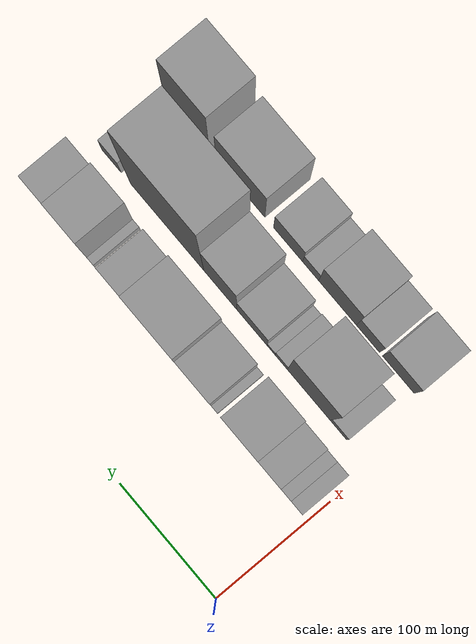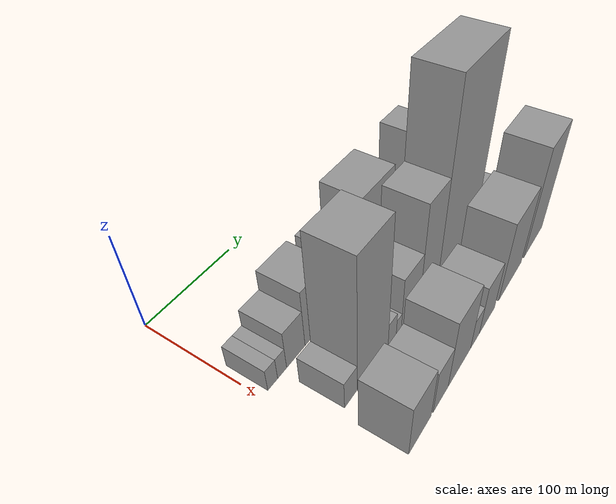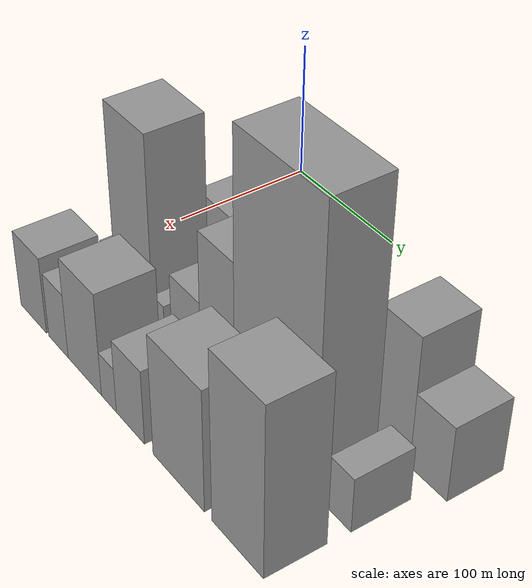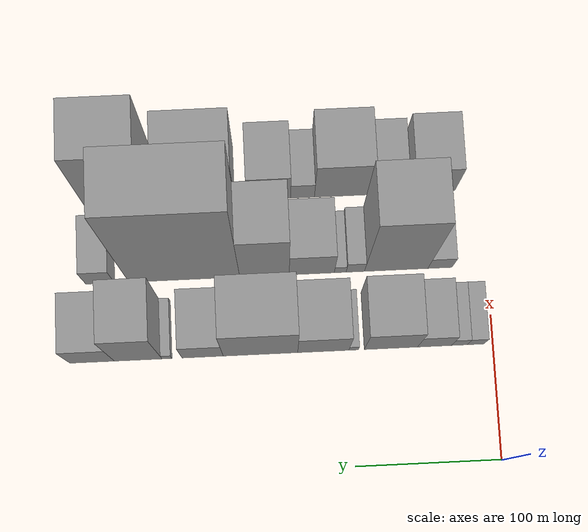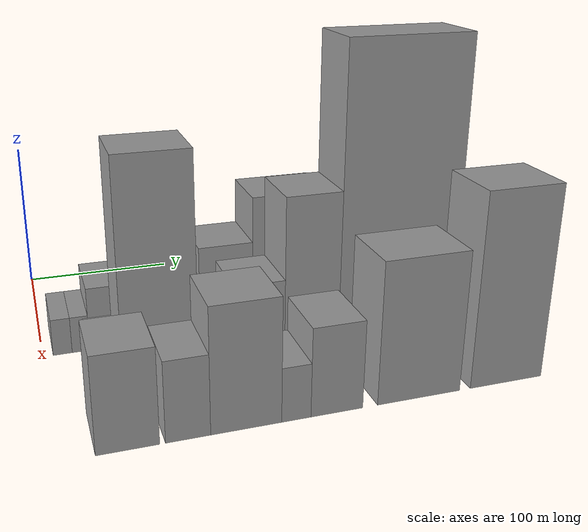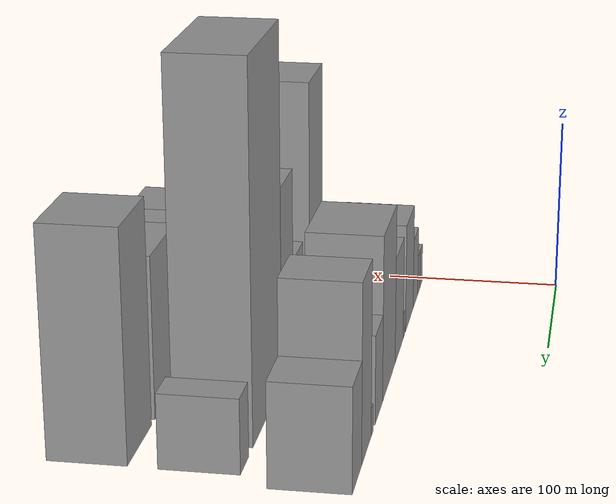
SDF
<sdf version="1.6">
 <world name="default">
  <model name="building_16">
   <static>1</static>
   <pose>100.0000 12.1694 0 0.000000 0.000000 0.000000</pose>
   <link name="link">
    <pose>0 0 12.00 0 0 0</pose>
    <collision name="collision"><geometry><box><size>40.0000 11.6483 24.0000</size></box></geometry></collision>
    <visual name="visual">
     <cast_shadows>0</cast_shadows>
     <geometry><box><size>40.0000 11.6483 24.0000</size></box></geometry>
     <material>
      <script>
       <uri>model://grey_wall/materials/scripts</uri>
       <uri>model://grey_wall/materials/textures</uri>
       <name>vrc/grey_wall</name>
      </script>
     </material>
    </visual>
   </link>
  </model>
  <model name="building_17">
   <static>1</static>
   <pose>100.0000 23.4495 0 0.000000 0.000000 0.000000</pose>
   <link name="link">
    <pose>0 0 12.00 0 0 0</pose>
    <collision name="collision"><geometry><box><size>40.0000 10.9120 24.0000</size></box></geometry></collision>
    <visual name="visual">
     <cast_shadows>0</cast_shadows>
     <geometry><box><size>40.0000 10.9120 24.0000</size></box></geometry>
     <material>
      <script>
       <uri>model://grey_wall/materials/scripts</uri>
       <uri>model://grey_wall/materials/textures</uri>
       <name>vrc/grey_wall</name>
      </script>
     </material>
    </visual>
   </link>
  </model>
  <model name="building_18">
   <static>1</static>
   <pose>100.0000 40.6644 0 0.000000 0.000000 0.000000</pose>
   <link name="link">
    <pose>0 0 21.00 0 0 0</pose>
    <collision name="collision"><geometry><box><size>40.0000 23.5177 42.0000</size></box></geometry></collision>
    <visual name="visual">
     <cast_shadows>0</cast_shadows>
     <geometry><box><size>40.0000 23.5177 42.0000</size></box></geometry>
     <material>
      <script>
       <uri>model://grey_wall/materials/scripts</uri>
       <uri>model://grey_wall/materials/textures</uri>
       <name>vrc/grey_wall</name>
      </script>
     </material>
    </visual>
   </link>
  </model>
  <model name="building_19">
   <static>1</static>
   <pose>100.0000 70.8931 0 0.000000 0.000000 0.000000</pose>
   <link name="link">
    <pose>0 0 31.50 0 0 0</pose>
    <collision name="collision"><geometry><box><size>40.0000 36.9398 63.0000</size></box></geometry></collision>
    <visual name="visual">
     <cast_shadows>0</cast_shadows>
     <geometry><box><size>40.0000 36.9398 63.0000</size></box></geometry>
     <material>
      <script>
       <uri>model://grey_wall/materials/scripts</uri>
       <uri>model://grey_wall/materials/textures</uri>
       <name>vrc/grey_wall</name>
      </script>
     </material>
    </visual>
   </link>
  </model>
  <model name="building_20">
   <static>1</static>
   <pose>100.0000 96.7150 0 0.000000 0.000000 0.000000</pose>
   <link name="link">
    <pose>0 0 7.50 0 0 0</pose>
    <collision name="collision"><geometry><box><size>40.0000 6.7040 15.0000</size></box></geometry></collision>
    <visual name="visual">
     <cast_shadows>0</cast_shadows>
     <geometry><box><size>40.0000 6.7040 15.0000</size></box></geometry>
     <material>
      <script>
       <uri>model://grey_wall/materials/scripts</uri>
       <uri>model://grey_wall/materials/textures</uri>
       <name>vrc/grey_wall</name>
      </script>
     </material>
    </visual>
   </link>
  </model>
  <model name="building_21">
   <static>1</static>
   <pose>100.0000 117.7842 0 0.000000 0.000000 0.000000</pose>
   <link name="link">
    <pose>0 0 30.00 0 0 0</pose>
    <collision name="collision"><geometry><box><size>40.0000 35.4345 60.0000</size></box></geometry></collision>
    <visual name="visual">
     <cast_shadows>0</cast_shadows>
     <geometry><box><size>40.0000 35.4345 60.0000</size></box></geometry>
     <material>
      <script>
       <uri>model://grey_wall/materials/scripts</uri>
       <uri>model://grey_wall/materials/textures</uri>
       <name>vrc/grey_wall</name>
      </script>
     </material>
    </visual>
   </link>
  </model>
  <model name="building_22">
   <static>1</static>
   <pose>100.0000 161.2391 0 0.000000 0.000000 0.000000</pose>
   <link name="link">
    <pose>0 0 45.00 0 0 0</pose>
    <collision name="collision"><geometry><box><size>40.0000 51.4753 90.0000</size></box></geometry></collision>
    <visual name="visual">
     <cast_shadows>0</cast_shadows>
     <geometry><box><size>40.0000 51.4753 90.0000</size></box></geometry>
     <material>
      <script>
       <uri>model://grey_wall/materials/scripts</uri>
       <uri>model://grey_wall/materials/textures</uri>
       <name>vrc/grey_wall</name>
      </script>
     </material>
    </visual>
   </link>
  </model>
  <model name="building_23">
   <static>1</static>
   <pose>100.0000 201.2230 0 0.000000 0.000000 0.000000</pose>
   <link name="link">
    <pose>0 0 24.00 0 0 0</pose>
    <collision name="collision"><geometry><box><size>40.0000 28.4923 48.0000</size></box></geometry></collision>
    <visual name="visual">
     <cast_shadows>0</cast_shadows>
     <geometry><box><size>40.0000 28.4923 48.0000</size></box></geometry>
     <material>
      <script>
       <uri>model://grey_wall/materials/scripts</uri>
       <uri>model://grey_wall/materials/textures</uri>
       <name>vrc/grey_wall</name>
      </script>
     </material>
    </visual>
   </link>
  </model>
  <model name="building_24">
   <static>1</static>
   <pose>100.0000 225.8914 0 0.000000 0.000000 0.000000</pose>
   <link name="link">
    <pose>0 0 7.50 0 0 0</pose>
    <collision name="collision"><geometry><box><size>40.0000 6.8446 15.0000</size></box></geometry></collision>
    <visual name="visual">
     <cast_shadows>0</cast_shadows>
     <geometry><box><size>40.0000 6.8446 15.0000</size></box></geometry>
     <material>
      <script>
       <uri>model://grey_wall/materials/scripts</uri>
       <uri>model://grey_wall/materials/textures</uri>
       <name>vrc/grey_wall</name>
      </script>
     </material>
    </visual>
   </link>
  </model>
  <model name="building_25">
   <static>1</static>
   <pose>100.0000 245.7878 0 0.000000 0.000000 0.000000</pose>
   <link name="link">
    <pose>0 0 46.50 0 0 0</pose>
    <collision name="collision"><geometry><box><size>40.0000 32.9482 93.0000</size></box></geometry></collision>
    <visual name="visual">
     <cast_shadows>0</cast_shadows>
     <geometry><box><size>40.0000 32.9482 93.0000</size></box></geometry>
     <material>
      <script>
       <uri>model://grey_wall/materials/scripts</uri>
       <uri>model://grey_wall/materials/textures</uri>
       <name>vrc/grey_wall</name>
      </script>
     </material>
    </visual>
   </link>
  </model>
  <model name="building_26">
   <static>1</static>
   <pose>100.0000 277.6288 0 0.000000 0.000000 0.000000</pose>
   <link name="link">
    <pose>0 0 27.00 0 0 0</pose>
    <collision name="collision"><geometry><box><size>40.0000 30.7338 54.0000</size></box></geometry></collision>
    <visual name="visual">
     <cast_shadows>0</cast_shadows>
     <geometry><box><size>40.0000 30.7338 54.0000</size></box></geometry>
     <material>
      <script>
       <uri>model://grey_wall/materials/scripts</uri>
       <uri>model://grey_wall/materials/textures</uri>
       <name>vrc/grey_wall</name>
      </script>
     </material>
    </visual>
   </link>
  </model>
  <model name="building_55">
   <static>1</static>
   <pose>155.0000 33.0657 0 0.000000 0.000000 0.000000</pose>
   <link name="link">
    <pose>0 0 15.00 0 0 0</pose>
    <collision name="collision"><geometry><box><size>40.0000 17.0834 30.0000</size></box></geometry></collision>
    <visual name="visual">
     <cast_shadows>0</cast_shadows>
     <geometry><box><size>40.0000 17.0834 30.0000</size></box></geometry>
     <material>
      <script>
       <uri>model://grey_wall/materials/scripts</uri>
       <uri>model://grey_wall/materials/textures</uri>
       <name>vrc/grey_wall</name>
      </script>
     </material>
    </visual>
   </link>
  </model>
  <model name="building_56">
   <static>1</static>
   <pose>155.0000 63.8324 0 0.000000 0.000000 0.000000</pose>
   <link name="link">
    <pose>0 0 70.50 0 0 0</pose>
    <collision name="collision"><geometry><box><size>40.0000 44.4502 141.0000</size></box></geometry></collision>
    <visual name="visual">
     <cast_shadows>0</cast_shadows>
     <geometry><box><size>40.0000 44.4502 141.0000</size></box></geometry>
     <material>
      <script>
       <uri>model://grey_wall/materials/scripts</uri>
       <uri>model://grey_wall/materials/textures</uri>
       <name>vrc/grey_wall</name>
      </script>
     </material>
    </visual>
   </link>
  </model>
  <model name="building_57">
   <static>1</static>
   <pose>155.0000 92.4736 0 0.000000 0.000000 0.000000</pose>
   <link name="link">
    <pose>0 0 13.50 0 0 0</pose>
    <collision name="collision"><geometry><box><size>40.0000 12.8322 27.0000</size></box></geometry></collision>
    <visual name="visual">
     <cast_shadows>0</cast_shadows>
     <geometry><box><size>40.0000 12.8322 27.0000</size></box></geometry>
     <material>
      <script>
       <uri>model://grey_wall/materials/scripts</uri>
       <uri>model://grey_wall/materials/textures</uri>
       <name>vrc/grey_wall</name>
      </script>
     </material>
    </visual>
   </link>
  </model>
  <model name="building_58">
   <static>1</static>
   <pose>155.0000 103.0673 0 0.000000 0.000000 0.000000</pose>
   <link name="link">
    <pose>0 0 9.00 0 0 0</pose>
    <collision name="collision"><geometry><box><size>40.0000 8.3551 18.0000</size></box></geometry></collision>
    <visual name="visual">
     <cast_shadows>0</cast_shadows>
     <geometry><box><size>40.0000 8.3551 18.0000</size></box></geometry>
     <material>
      <script>
       <uri>model://grey_wall/materials/scripts</uri>
       <uri>model://grey_wall/materials/textures</uri>
       <name>vrc/grey_wall</name>
      </script>
     </material>
    </visual>
   </link>
  </model>
  <model name="building_59">
   <static>1</static>
   <pose>155.0000 122.9987 0 0.000000 0.000000 0.000000</pose>
   <link name="link">
    <pose>0 0 28.50 0 0 0</pose>
    <collision name="collision"><geometry><box><size>40.0000 31.5078 57.0000</size></box></geometry></collision>
    <visual name="visual">
     <cast_shadows>0</cast_shadows>
     <geometry><box><size>40.0000 31.5078 57.0000</size></box></geometry>
     <material>
      <script>
       <uri>model://grey_wall/materials/scripts</uri>
       <uri>model://grey_wall/materials/textures</uri>
       <name>vrc/grey_wall</name>
      </script>
     </material>
    </visual>
   </link>
  </model>
  <model name="building_60">
   <static>1</static>
   <pose>155.0000 156.0579 0 0.000000 0.000000 0.000000</pose>
   <link name="link">
    <pose>0 0 54.00 0 0 0</pose>
    <collision name="collision"><geometry><box><size>40.0000 34.6107 108.0000</size></box></geometry></collision>
    <visual name="visual">
     <cast_shadows>0</cast_shadows>
     <geometry><box><size>40.0000 34.6107 108.0000</size></box></geometry>
     <material>
      <script>
       <uri>model://grey_wall/materials/scripts</uri>
       <uri>model://grey_wall/materials/textures</uri>
       <name>vrc/grey_wall</name>
      </script>
     </material>
    </visual>
   </link>
  </model>
  <model name="building_61">
   <static>1</static>
   <pose>155.0000 212.0960 0 0.000000 0.000000 0.000000</pose>
   <link name="link">
    <pose>0 0 97.50 0 0 0</pose>
    <collision name="collision"><geometry><box><size>40.0000 77.4655 195.0000</size></box></geometry></collision>
    <visual name="visual">
     <cast_shadows>0</cast_shadows>
     <geometry><box><size>40.0000 77.4655 195.0000</size></box></geometry>
     <material>
      <script>
       <uri>model://grey_wall/materials/scripts</uri>
       <uri>model://grey_wall/materials/textures</uri>
       <name>vrc/grey_wall</name>
      </script>
     </material>
    </visual>
   </link>
  </model>
  <model name="building_62">
   <static>1</static>
   <pose>155.0000 270.9017 0 0.000000 0.000000 0.000000</pose>
   <link name="link">
    <pose>0 0 19.50 0 0 0</pose>
    <collision name="collision"><geometry><box><size>40.0000 20.1458 39.0000</size></box></geometry></collision>
    <visual name="visual">
     <cast_shadows>0</cast_shadows>
     <geometry><box><size>40.0000 20.1458 39.0000</size></box></geometry>
     <material>
      <script>
       <uri>model://grey_wall/materials/scripts</uri>
       <uri>model://grey_wall/materials/textures</uri>
       <name>vrc/grey_wall</name>
      </script>
     </material>
    </visual>
   </link>
  </model>
  <model name="building_90">
   <static>1</static>
   <pose>210.0000 35.2765 0 0.000000 0.000000 0.000000</pose>
   <link name="link">
    <pose>0 0 28.50 0 0 0</pose>
    <collision name="collision"><geometry><box><size>40.0000 33.0391 57.0000</size></box></geometry></collision>
    <visual name="visual">
     <cast_shadows>0</cast_shadows>
     <geometry><box><size>40.0000 33.0391 57.0000</size></box></geometry>
     <material>
      <script>
       <uri>model://grey_wall/materials/scripts</uri>
       <uri>model://grey_wall/materials/textures</uri>
       <name>vrc/grey_wall</name>
      </script>
     </material>
    </visual>
   </link>
  </model>
  <model name="building_91">
   <static>1</static>
   <pose>210.0000 66.8553 0 0.000000 0.000000 0.000000</pose>
   <link name="link">
    <pose>0 0 24.00 0 0 0</pose>
    <collision name="collision"><geometry><box><size>40.0000 24.1184 48.0000</size></box></geometry></collision>
    <visual name="visual">
     <cast_shadows>0</cast_shadows>
     <geometry><box><size>40.0000 24.1184 48.0000</size></box></geometry>
     <material>
      <script>
       <uri>model://grey_wall/materials/scripts</uri>
       <uri>model://grey_wall/materials/textures</uri>
       <name>vrc/grey_wall</name>
      </script>
     </material>
    </visual>
   </link>
  </model>
  <model name="building_92">
   <static>1</static>
   <pose>210.0000 98.6231 0 0.000000 0.000000 0.000000</pose>
   <link name="link">
    <pose>0 0 37.50 0 0 0</pose>
    <collision name="collision"><geometry><box><size>40.0000 39.4172 75.0000</size></box></geometry></collision>
    <visual name="visual">
     <cast_shadows>0</cast_shadows>
     <geometry><box><size>40.0000 39.4172 75.0000</size></box></geometry>
     <material>
      <script>
       <uri>model://grey_wall/materials/scripts</uri>
       <uri>model://grey_wall/materials/textures</uri>
       <name>vrc/grey_wall</name>
      </script>
     </material>
    </visual>
   </link>
  </model>
  <model name="building_93">
   <static>1</static>
   <pose>210.0000 126.7239 0 0.000000 0.000000 0.000000</pose>
   <link name="link">
    <pose>0 0 16.50 0 0 0</pose>
    <collision name="collision"><geometry><box><size>40.0000 16.7845 33.0000</size></box></geometry></collision>
    <visual name="visual">
     <cast_shadows>0</cast_shadows>
     <geometry><box><size>40.0000 16.7845 33.0000</size></box></geometry>
     <material>
      <script>
       <uri>model://grey_wall/materials/scripts</uri>
       <uri>model://grey_wall/materials/textures</uri>
       <name>vrc/grey_wall</name>
      </script>
     </material>
    </visual>
   </link>
  </model>
  <model name="building_94">
   <static>1</static>
   <pose>210.0000 150.4212 0 0.000000 0.000000 0.000000</pose>
   <link name="link">
    <pose>0 0 27.00 0 0 0</pose>
    <collision name="collision"><geometry><box><size>40.0000 30.6100 54.0000</size></box></geometry></collision>
    <visual name="visual">
     <cast_shadows>0</cast_shadows>
     <geometry><box><size>40.0000 30.6100 54.0000</size></box></geometry>
     <material>
      <script>
       <uri>model://grey_wall/materials/scripts</uri>
       <uri>model://grey_wall/materials/textures</uri>
       <name>vrc/grey_wall</name>
      </script>
     </material>
    </visual>
   </link>
  </model>
  <model name="building_95">
   <static>1</static>
   <pose>210.0000 200.4283 0 0.000000 0.000000 0.000000</pose>
   <link name="link">
    <pose>0 0 43.50 0 0 0</pose>
    <collision name="collision"><geometry><box><size>40.0000 51.4043 87.0000</size></box></geometry></collision>
    <visual name="visual">
     <cast_shadows>0</cast_shadows>
     <geometry><box><size>40.0000 51.4043 87.0000</size></box></geometry>
     <material>
      <script>
       <uri>model://grey_wall/materials/scripts</uri>
       <uri>model://grey_wall/materials/textures</uri>
       <name>vrc/grey_wall</name>
      </script>
     </material>
    </visual>
   </link>
  </model>
  <model name="building_96">
   <static>1</static>
   <pose>210.0000 256.6577 0 0.000000 0.000000 0.000000</pose>
   <link name="link">
    <pose>0 0 60.00 0 0 0</pose>
    <collision name="collision"><geometry><box><size>40.0000 47.0546 120.0000</size></box></geometry></collision>
    <visual name="visual">
     <cast_shadows>0</cast_shadows>
     <geometry><box><size>40.0000 47.0546 120.0000</size></box></geometry>
     <material>
      <script>
       <uri>model://grey_wall/materials/scripts</uri>
       <uri>model://grey_wall/materials/textures</uri>
       <name>vrc/grey_wall</name>
      </script>
     </material>
    </visual>
   </link>
  </model>
 </world>
</sdf>
